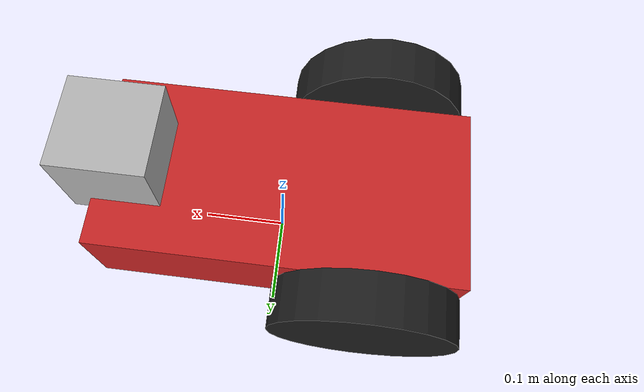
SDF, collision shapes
<?xml version='1.0'?>
    <sdf version='1.4'>
      <model name="my_robot">

      <static>false</static>

      <link name='chassis'>
          <pose>0 0 .1 0 0 0</pose>
          <inertial>
            <mass>10.0</mass>
            <inertia>
              <ixx>0.100982</ixx>
              <ixy>0</ixy>
              <ixz>0.00196078</ixz>
              <iyy>0.104904</iyy>
              <iyz>0</iyz>
              <izz>0.103924</izz>
            </inertia>
          </inertial>
          <collision name='collision'>
            <geometry>
              <box>
                <size>.4 .2 .1</size>
              </box>
            </geometry>
          </collision>

          <visual name='visual'>
            <geometry>
              <box>
                <size>.4 .2 .1</size>
              </box>
            </geometry>
            <material>
               <script>
                  <uri>file://media/materials/scripts/gazebo.material</uri>
                  <name>Gazebo/Red</name>
               </script>
            </material>

          </visual>

          <collision name='caster_collision'>
            <pose>0.15 0 -0.05 0 0 0</pose>
            <geometry>
              <sphere>
              <radius>.05</radius>
            </sphere>
          </geometry>

          <surface>
            <friction>
              <ode>
                <mu>0</mu>
                <mu2>0</mu2>
                <slip1>1.0</slip1>
                <slip2>1.0</slip2>
              </ode>
            </friction>
          </surface>
        </collision>

        <visual name='caster_visual'>
          <pose>0.15 0 -0.05 0 0 0</pose>
          <geometry>
            <sphere>
              <radius>.05</radius>
            </sphere>
          </geometry>
          <material>
            <script>
               <uri>file://media/materials/scripts/gazebo.material</uri>
               <name>Gazebo/Black</name>
            </script>
          </material>
        </visual>
       <sensor name="imu_sensor" type="imu">
        <always_on>true</always_on>
        <update_rate>100</update_rate>
        <visualize>true</visualize>
        <topic>__default_topic__</topic>
      <plugin filename="libgazebo_ros_imu_sensor.so" name="imu_plugin">
        <topicName>imu</topicName>
        <bodyName>chassis</bodyName>
        <updateRateHZ>100.0</updateRateHZ>
        <gaussianNoise>0.0</gaussianNoise>
        <xyzOffset>0 0 0</xyzOffset>
        <rpyOffset>0 0 0</rpyOffset>
        <frameName>imu_link</frameName>
        <initialOrientationAsReference>false</initialOrientationAsReference>
      </plugin>
      <pose>0 0 0 0 0 0</pose>
    </sensor>

      </link>
      <link name="left_wheel">
        <pose>-0.1 0.13 0.1 0 1.5707 1.5707</pose>
        <inertial>
          <mass>5</mass>
          <inertia>
            <ixx>0.1</ixx>
            <ixy>0</ixy>
            <ixz>0</ixz>
            <iyy>0.1</iyy>
            <iyz>0</iyz>
            <izz>0.1</izz>
          </inertia>
        </inertial>
        <collision name="collision">
          <geometry>
            <cylinder>
              <radius>.1</radius>
              <length>.05</length>
            </cylinder>
          </geometry>
        </collision>
        <visual name="visual">
          <geometry>
            <cylinder>
              <radius>.1</radius>
              <length>.05</length>
            </cylinder>
          </geometry>
          <material>
            <script>
               <uri>file://media/materials/scripts/gazebo.material</uri>
               <name>Gazebo/Black</name>
            </script>
          </material>
        </visual>
      </link>

      <link name="right_wheel">
        <pose>-0.1 -0.13 0.1 0 1.5707 1.5707</pose>
        <inertial>
          <mass>5</mass>
          <inertia>
            <ixx>0.1</ixx>
            <ixy>0</ixy>
            <ixz>0</ixz>
            <iyy>0.1</iyy>
            <iyz>0</iyz>
            <izz>0.1</izz>
          </inertia>
        </inertial>
        <collision name="collision">
          <geometry>
            <cylinder>
              <radius>.1</radius>
              <length>.05</length>
            </cylinder>
          </geometry>
        </collision>
        <visual name="visual">
          <geometry>
            <cylinder>
              <radius>.1</radius>
              <length>.05</length>
            </cylinder>
          </geometry>
          <material>
            <script>
               <uri>file://media/materials/scripts/gazebo.material</uri>
               <name>Gazebo/Black</name>
            </script>
          </material>
        </visual>
      </link>

      <link name='hokuyo_link'>
          <pose>0.175 0 .175 0 0 0</pose>
          <inertial>
            <mass>1e-5</mass>
            <inertia>
              <ixx>1e-6</ixx>
              <ixy>0</ixy>
              <ixz>0</ixz>
              <iyy>1e-6</iyy>
              <iyz>0</iyz>
              <izz>1e-6</izz>
            </inertia>
          </inertial>

          <collision name='collision'>
            <geometry>
              <box>
                <size>.1 .1 .1</size>
              </box>
            </geometry>
          </collision>

          <visual name='visual'>
            <geometry>
            <mesh>
              <uri>model://hokuyo/meshes/hokuyo.dae</uri>
            </mesh>
            </geometry>
          </visual>
     <sensor type="ray" name="head_hokuyo_sensor">
      <pose>0 0 0 0 0 0</pose>
      <visualize>true</visualize>
      <update_rate>40</update_rate>
      <ray>
        <scan>
          <horizontal>
            <samples>720</samples>
            <resolution>1</resolution>
            <min_angle>-0.785</min_angle>
            <max_angle>1.785</max_angle>
          </horizontal>
        </scan>
        <range>
          <min>0.10</min>
          <max>30.0</max>
          <resolution>0.01</resolution>
        </range>
        <noise>
          <type>gaussian</type>
          <mean>0.0</mean>
          <stddev>0.01</stddev>
        </noise>
      </ray>
      <plugin name="gazebo_ros_head_hokuyo_controller" filename="libgazebo_ros_laser.so">
        <topicName>/laser/scan</topicName>
        <frameName>hokuyo_link</frameName>
      </plugin>
    </sensor>
       </link>

      <joint type="revolute" name="left_wheel_hinge">
        <pose>0 0 -0.03 0 0 0</pose>
        <child>left_wheel</child>
        <parent>chassis</parent>
        <axis>
          <xyz>0 1 0</xyz>
        </axis>
        <dynamics>
          <spring_reference>0</spring_reference>
          <spring_stiffness>0</spring_stiffness>
        </dynamics>
      </joint>

      <joint type="revolute" name="right_wheel_hinge">
        <pose>0 0 0.03 0 0 0</pose>
        <child>right_wheel</child>
        <parent>chassis</parent>
        <axis>
          <xyz>0 1 0</xyz>
        </axis>
        <dynamics>
          <spring_reference>0</spring_reference>
          <spring_stiffness>0</spring_stiffness>
        </dynamics>
      </joint>
      <joint name="hokuyo_joint" type="fixed">
        <pose>0 0 0 0 0 0</pose>
        <child>hokuyo_link</child>
        <parent>chassis</parent>
      </joint>

      <!-- Default plugin for the differential drive controller -->
      <plugin name="differential_drive_controller" filename="libgazebo_ros_diff_drive.so">
        <!-- Plugin update rate in Hz -->
        <updateRate>100</updateRate>
        <!-- Name of joints -->
        <leftJoint>left_wheel_hinge</leftJoint>
        <rightJoint>right_wheel_hinge</rightJoint>
        <!-- The distance from the center of one wheel to the other, in meters, defaults to 0.34 m -->
        <wheelSeparation>0.26</wheelSeparation>
        <!-- Diameter of the wheels, in meters, defaults to 0.15 m -->
        <wheelDiameter>0.2</wheelDiameter>
        <!-- 1.0 Wheel acceleration, in rad/s^2, defaults to 0.0 rad/s^2 -->
        <wheelAcceleration>10.0</wheelAcceleration>
        <!-- 20 Maximum torque which the wheels can produce, in Nm, defaults to 5 Nm -->
        <wheelTorque>100</wheelTorque>
        <!-- Topic to receive geometry_msgs/Twist message commands, defaults to `cmd_vel` -->
        <commandTopic>cmd_vel</commandTopic>
        <!-- Topic to publish nav_msgs/Odometry messages, defaults to `odom` -->
        <odometryTopic>odom</odometryTopic>
        <!-- Odometry frame, defaults to `odom` -->
        <odometryFrame>odom</odometryFrame>
        <!-- Robot frame to calculate odometry from, defaults to `base_footprint` -->
        <robotBaseFrame>base_footprint</robotBaseFrame>
        <!-- Odometry source, 0 for ENCODER, 1 for WORLD, defaults to WORLD -->
        <odometrySource>1</odometrySource>
        <!-- Set to true to publish transforms for the wheel links, defaults to false -->
        <publishWheelTF>true</publishWheelTF>
        <!-- Set to true to publish transforms for the odometry, defaults to true -->
        <publishOdomTF>true</publishOdomTF>
        <!-- Set to true to publish sensor_msgs/JointState on /joint_states for the wheel joints, defaults to false -->
        <publishWheelJointState>true</publishWheelJointState>
        <!-- Set to true to swap right and left wheels, defaults to true -->
        <legacyMode>true</legacyMode>
      </plugin>

  </model>
</sdf>
